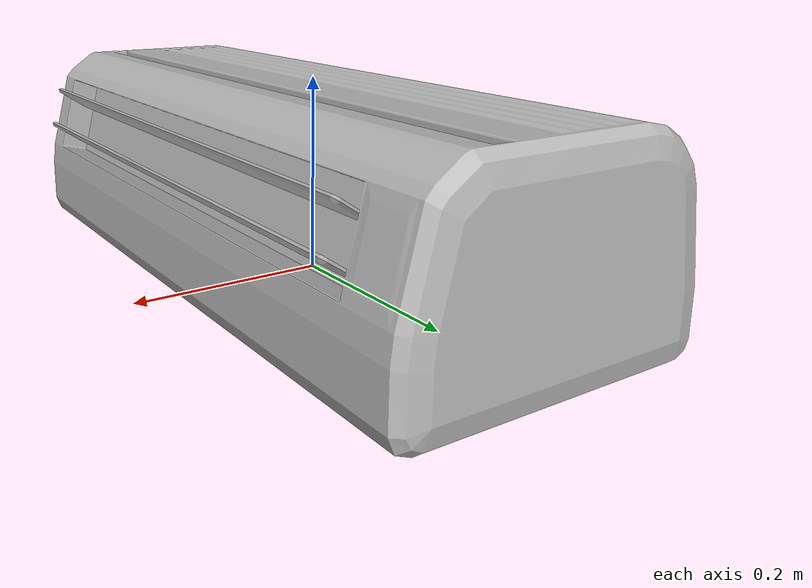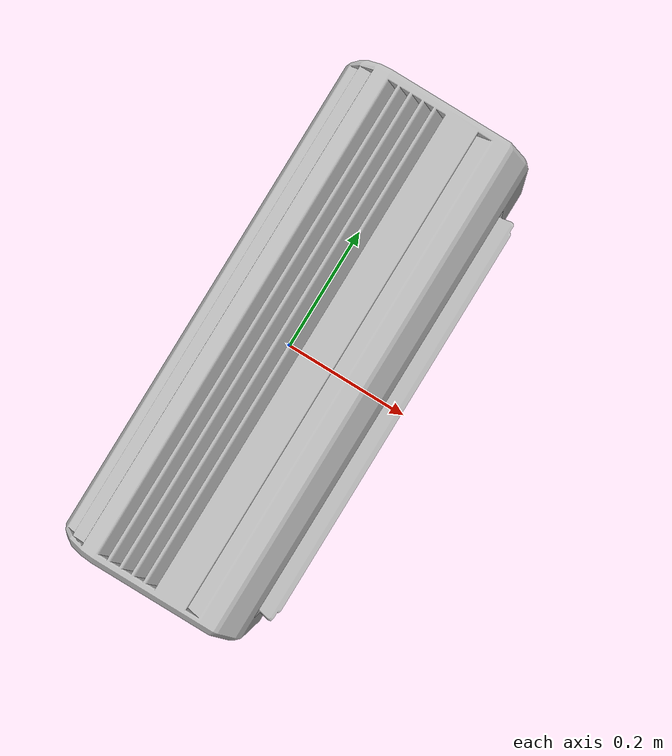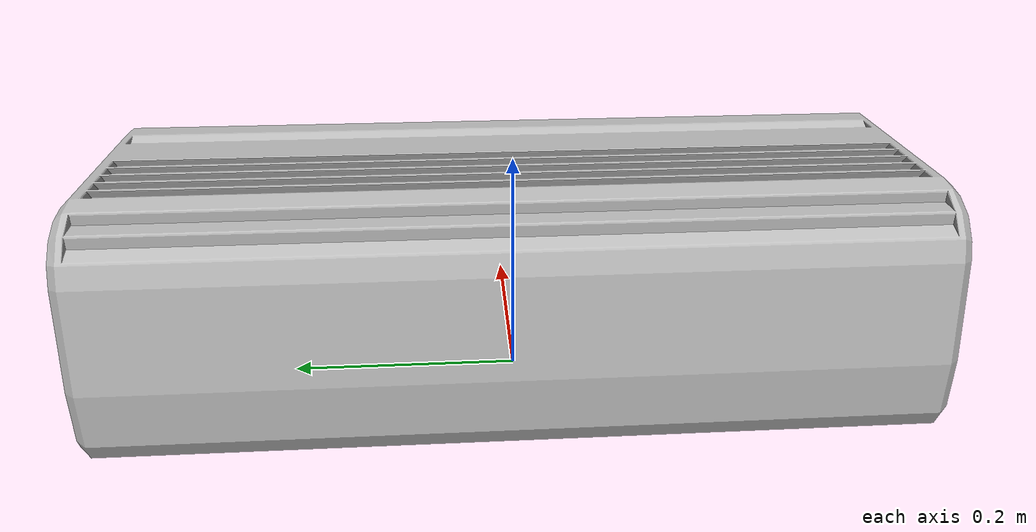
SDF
<?xml version='1.0'?>
<sdf version='1.4'>
  <model name='225'>
    <pose>0 0 0 0 0 0</pose>
    <static>true</static>
    <link name='link'>
      <collision name='collision'>
        <pose>0 0 0 0 0 0</pose>
        <geometry>
          <box>
            <size>0.31 0.710003 2</size>
          </box>
        </geometry>
      </collision>
      <visual name='visual'>
        <pose>0 0 0 0 0 0</pose>
        <geometry>
          <mesh><uri>model://225/225.dae</uri></mesh>
        </geometry>
      </visual>
    </link>
  </model>
</sdf>
